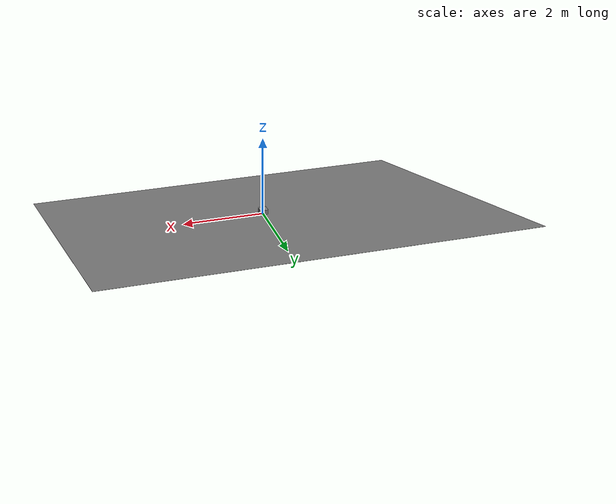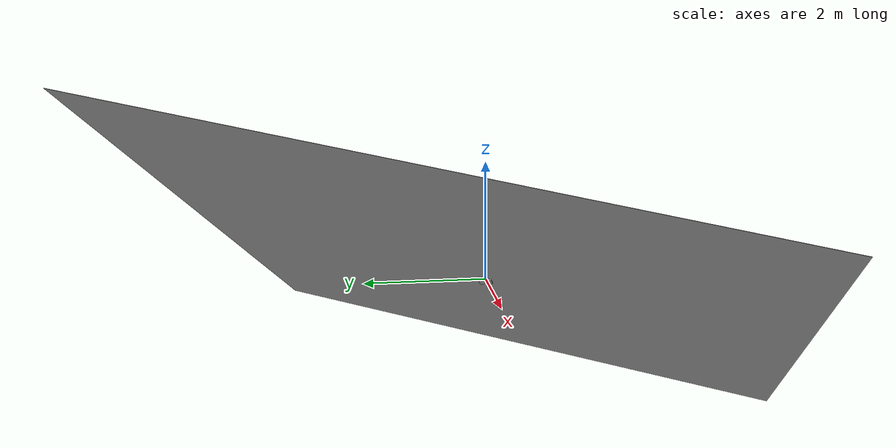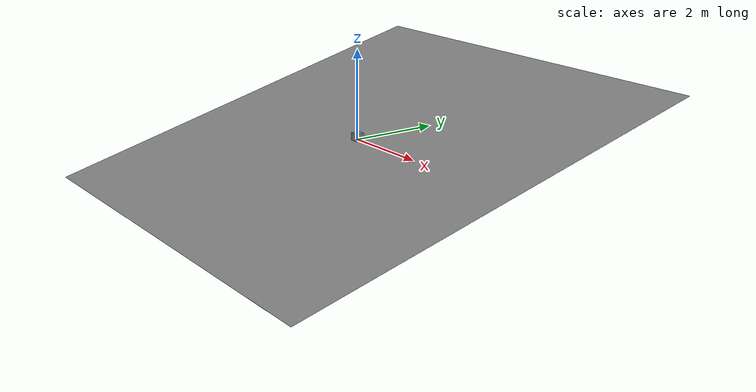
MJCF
<mujoco model="cone_check">
            <option gravity="0 0 -9.81" solver="PGS" cone="elliptic"
                    iterations="100" noslip_iterations="50" noslip_tolerance="1e-12"/>
            <worldbody>
                <body pos="0 0 0.05">
                    <joint type="free"/>
                    <geom type="box" size="0.1 0.1 0.1" mass="1.0"
                          friction="0.5 0.3 0.005" condim="3"/>
                </body>
                <geom type="plane" size="5 5 0.1"
                      euler="15 0 0" friction="0.5 0.3 0.005" condim="3"/>
            </worldbody>
        </mujoco>
